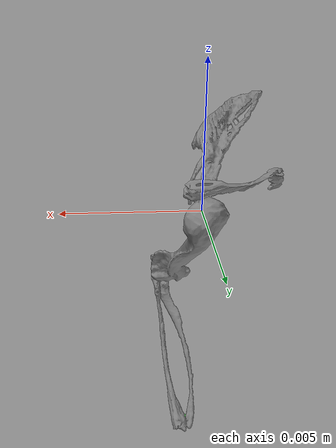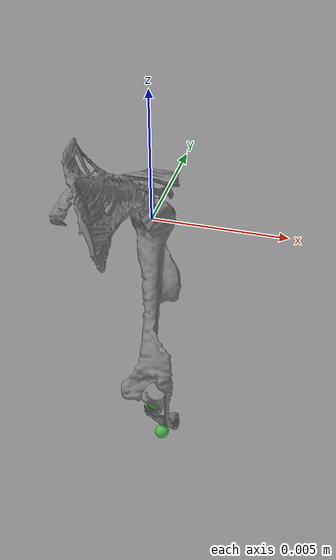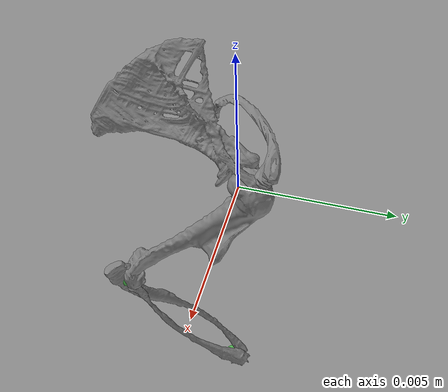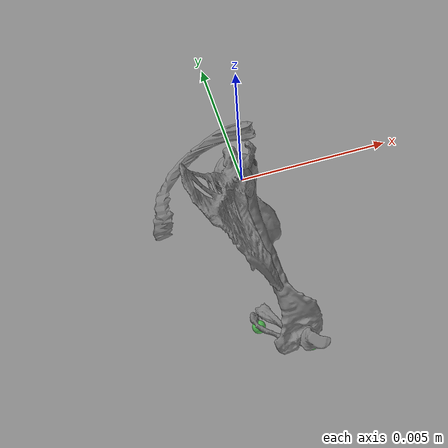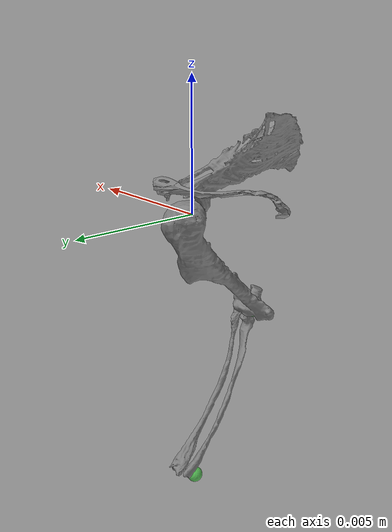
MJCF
<?xml version="1.0" encoding="utf-8"?>
<mujoco model="mouse_ghostpair">
    <option integrator="RK4" timestep="0.001" gravity="0 0 -9.81" solver="CG" iterations="6" ls_iterations="6"></option>
	<default>
	<joint limited="true" solreflimit="0.01 1" solimplimit="0.99 0.9999 0" armature="4e-06" damping="0.001" stiffness="0.001"/>
	</default>
    <size njmax="1000" nconmax="400" nkey="1" nuser_jnt="1"/>
    <asset>
        <texture type="skybox" builtin="gradient" rgb1="1 1 1" rgb2="0.6 0.8 1" width="256" height="1536"/>
        <texture name="grid" type="2d" builtin="checker" width="512" height="512" rgb1=".1 .2 .3" rgb2=".2 .3 .4"/>
        <material name="grid" texture="grid" texrepeat="1 1" texuniform="true" reflectance=".2"/>
        <material name="ghost_material" rgba="1 1 1 0.3" specular="0" shininess="0"/>
        <mesh file="/root/vast/eric/stac-mjx/meshes/stl/Bone_Scapula_right_v3.stl"/>
        <mesh file="/root/vast/eric/stac-mjx/meshes/stl/Bone_Humerus_right_v3.stl"/>
        <mesh file="/root/vast/eric/stac-mjx/meshes/stl/Bone_Clavicle_right_v3.stl"/>
        <mesh file="/root/vast/eric/stac-mjx/meshes/stl/Bone_Ulna_right_v3.stl"/>
        <mesh file="/root/vast/eric/stac-mjx/meshes/stl/Bone_Radius_right_v3.stl"/>
        <mesh file="/root/vast/eric/stac-mjx/meshes/stl/Bone_Segments_Hand_fixed.stl"/>
    </asset>
    <worldbody>
        <light directional="true"/>
        <body name="ground" euler="0 0 0">
            <camera name="my_camera" pos="0.04 .004 0.037" fovy="20" quat="0.6532815 0.2705981 0.2705981 0.6532815"/>
            <camera name="close_profile" pos="0.04 .004 0.037" fovy="20" quat="0.6532815 0.2705981 0.2705981 0.6532815"/>

            <!-- Active Model (Original) -->
            <body name="clavicle" pos="0 0 0" euler="0 0 0">
                <geom type="mesh" mesh="Bone_Clavicle_right_v3" pos="0 0 0.0005" contype="1" conaffinity="0"/>
                <body name="scapula" pos="-0.0001 -0.0001 0.0005" euler="-30 -15 0">
                    <geom type="mesh" mesh="Bone_Scapula_right_v3" pos="0 0 0" contype="1" conaffinity="0"/>
                    <body name="humerus" pos="0 0.0007 -0.0002" euler="-15 0 0">
                        <inertial pos="-0.0005 0.0003 -0.004" mass="0.0001258" diaginertia="3e-8 3e-8 3e-8"/>
                        <geom type="mesh" mesh="Bone_Humerus_right_v3" pos="0 0 0" contype="1" conaffinity="0"/>
                        <joint name="sh_elv" type="hinge" pos="0 0 0" axis="0 1 0" range="-70 0" limited="true"/>
                        <joint name="sh_extension" type="hinge" pos="0 0 0" axis="0 0 1" range="-70 40" limited="true"/>
                        <joint name="sh_rotation" type="hinge" pos="0 0 0" axis="1 0 0" range="-25 89" limited="true"/>
                        <body name="ulna" pos="-0.0005 0.0003 -0.0068" euler="-15 0 0">
                            <geom type="mesh" mesh="Bone_Ulna_right_v3" pos="0 0 0" contype="1" conaffinity="0"/>
                            <joint name="elbow_joint" type="hinge" pos="0 0 0" axis="1 0 0" range="-80 90" limited="true"/>
                            <inertial pos="-0.0009 0.004 0.0005" mass="0.0001258" diaginertia="3e-8 3e-8 3e-8"/>
                            <body name="elbow" pos="0 0 0" euler="0 0 0">
                                <geom name="elbow_marker" type="sphere" size="0.0003" pos="0 0 0" contype="0" conaffinity="0" rgba="0.3 0.8 0.3 0.8"/>
                                <body name="radius" pos="0.00035 0.0002 0.0002" euler="0 0 0">
                                    <geom type="mesh" mesh="Bone_Radius_right_v3" pos="0 0 0" contype="1" conaffinity="0"/>
                                    <body name="wrist_body" pos="-0.002 0.0065 0.0005" euler="0 0 0">
                                        <geom name="wrist_marker" type="sphere" size="0.0003" pos="0 0 0" contype="0" conaffinity="0" rgba="0.3 0.8 0.3 0.8"/>
                                    </body>
                                </body>
                            </body>
                        </body>
                    </body>
                </body>
            </body>

            <!-- Ghost Model (Duplicate with appended names) -->
            <body name="mouse_ghost" pos="0 0 0">
                <body name="clavicle_ghost" pos="0 0 0" euler="0 0 0">
                    <geom name="clavicle_ghost_geom" type="mesh" mesh="Bone_Clavicle_right_v3" pos="0 0 0.0005" contype="1" conaffinity="0" material="ghost_material"/>
                    <body name="scapula_ghost" pos="-0.0001 -0.0001 0.0005" euler="-30 -15 0">
                        <geom name="scapula_ghost_geom" type="mesh" mesh="Bone_Scapula_right_v3" pos="0 0 0" contype="1" conaffinity="0" material="ghost_material"/>
                        <body name="humerus_ghost" pos="0 0.0007 -0.0002" euler="-15 0 0">
                            <inertial pos="-0.0005 0.0003 -0.004" mass="0.0001258" diaginertia="3e-8 3e-8 3e-8"/>
                            <geom name="humerus_ghost_geom" type="mesh" mesh="Bone_Humerus_right_v3" pos="0 0 0" contype="1" conaffinity="0" material="ghost_material"/>
                            <joint name="sh_elv_ghost" type="hinge" pos="0 0 0" axis="0 1 0"  range="-70 0" limited="true"/>
                            <joint name="sh_extension_ghost" type="hinge" pos="0 0 0" axis="0 0 1"  range="-70 40" limited="true"/>
                            <joint name="sh_rotation_ghost" type="hinge" pos="0 0 0" axis="1 0 0"  range="-25 89" limited="true"/>
                            <body name="ulna_ghost" pos="-0.0005 0.0003 -0.0068" euler="-15 0 0">
                                <geom name="ulna_ghost_geom" type="mesh" mesh="Bone_Ulna_right_v3" pos="0 0 0" contype="1" conaffinity="0" material="ghost_material"/>
                                <joint name="elbow_joint_ghost" type="hinge" pos="0 0 0" axis="1 0 0"  range="-80 90" limited="true"/>
                                <inertial pos="-0.0009 0.004 0.0005" mass="0.0001258" diaginertia="3e-8 3e-8 3e-8"/>
                                <body name="elbow_ghost" pos="0 0 0" euler="0 0 0">
                                    <geom name="elbow_marker_ghost" type="sphere" size="0.0003" pos="0 0 0" contype="0" conaffinity="0" rgba="0.3 0.8 0.3 0.8"/>
                                    <body name="radius_ghost" pos="0.00035 0.0002 0.0002" euler="0 0 0">
                                        <geom name="radius_ghost_geom" type="mesh" mesh="Bone_Radius_right_v3" pos="0 0 0" contype="1" conaffinity="0" material="ghost_material"/>
                                        <body name="wrist_body_ghost" pos="-0.002 0.0065 0.0005" euler="0 0 0">
                                            <geom name="wrist_marker_ghost" type="sphere" size="0.0003" pos="0 0 0" contype="0" conaffinity="0" rgba="0.3 0.8 0.3 0.8"/>
                                        </body>
                                    </body>
                                </body>
                            </body>
                        </body>
                    </body>
                </body>
            </body>
        </body>
    </worldbody>
    <actuator>
        <motor name="sh_elv_act" joint="sh_elv" ctrllimited="true" ctrlrange="-.1 .1" forcerange="-.1 .1"/>
		<motor name="sh_extension_act" joint="sh_extension" ctrllimited="true" ctrlrange="-.1 .1" forcerange="-.1 .1"/>
		<motor name="sh_rotation_act" joint="sh_rotation" ctrllimited="true" ctrlrange="-.1 .1" forcerange="-.1 .1"/>
		<motor name="elbow_act" joint="elbow_joint" ctrllimited="true" ctrlrange="-.1 .1" forcerange="-.1 .1"/>
    </actuator>
</mujoco>
